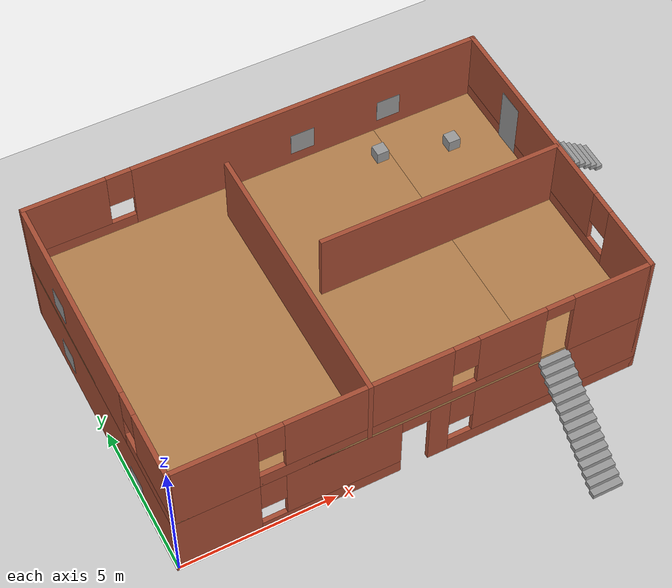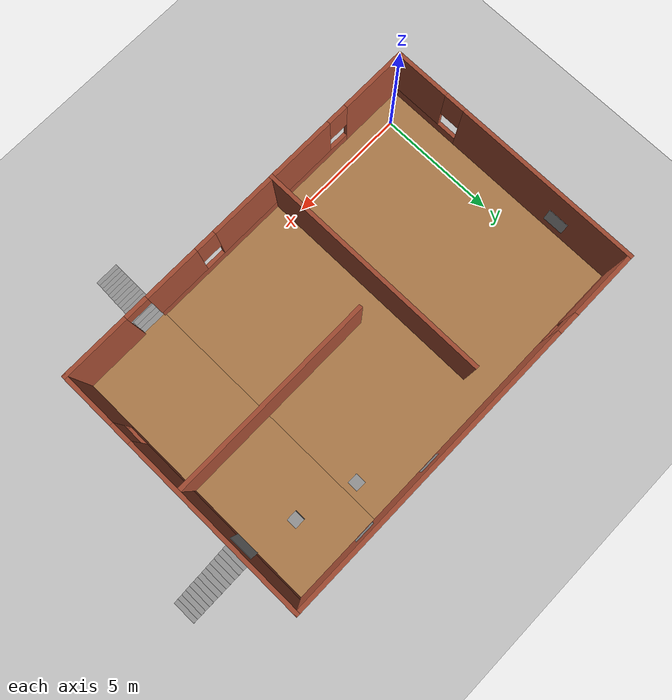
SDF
<sdf version="1.7">
 <world name="default">
  <model name="ground_plane">
   <static>1</static>
   <link name="link">
    <collision name="collision">
     <geometry><plane><normal>0 0 1</normal><size>100 100</size></plane></geometry>
     <surface><friction><ode><mu>100</mu><mu2>50</mu2></ode></friction></surface>
    </collision>
    <visual name="visual">
     <cast_shadows>0</cast_shadows>
     <geometry><plane><normal>0 0 1</normal><size>100 100</size></plane></geometry>
     <material>
      <script><uri>file://media/materials/scripts/gazebo.material</uri><name>Gazebo/Grey</name></script>
     </material>
    </visual>
   </link>
  </model>
  <model name="warehouse_automation">
   <pose>9.2125 3.2875 0 0 -0 0</pose>
   <link name="Door_1">
    <collision name="Door_1_Collision">
     <geometry><box><size>0.9 0.17 2</size></box></geometry>
     <pose>0 0 1 0 -0 0</pose>
    </collision>
    <visual name="Door_1_Visual">
     <pose>0 0 1 0 -0 0</pose>
     <geometry><box><size>0.9 0.17 2</size></box></geometry>
     <material>
      <script><uri>file://media/materials/scripts/gazebo.material</uri><name>Gazebo/Grey</name></script>
     </material>
    </visual>
    <pose>5.7875 4.2125 2.5 0 -0 1.58891</pose>
   </link>
   <link name="Floor_0">
    <pose>-1.7125 1.7125 2.5 0 -0 0</pose>
    <visual name="Floor_0_Visual_0">
     <pose>-1.7875 0 0.05 0 -0 0</pose>
     <geometry><box><size>11.575 10.15 0.1</size></box></geometry>
     <material>
      <script><uri>file://media/materials/scripts/gazebo.material</uri><name>Gazebo/Wood</name></script>
      <ambient>0.835294 0.780392 0.478431 1</ambient>
     </material>
     <meta><layer>1</layer></meta>
    </visual>
    <collision name="Floor_0_Collision_0">
     <geometry><box><size>11.575 10.15 0.1</size></box></geometry>
     <pose>-1.7875 0 0.05 0 -0 0</pose>
    </collision>
    <visual name="Floor_0_Visual_1">
     <pose>5.75 0.0375 0.05 0 -0 0</pose>
     <geometry><box><size>3.5 10.075 0.1</size></box></geometry>
     <material>
      <script><uri>file://media/materials/scripts/gazebo.material</uri><name>Gazebo/Wood</name></script>
      <ambient>0.835294 0.780392 0.478431 1</ambient>
     </material>
     <meta><layer>1</layer></meta>
    </visual>
    <collision name="Floor_0_Collision_1">
     <geometry><box><size>3.5 10.075 0.1</size></box></geometry>
     <pose>5.75 0.0375 0.05 0 -0 0</pose>
    </collision>
    <visual name="Floor_0_Visual_2">
     <pose>7.5375 -1.5 0.05 0 -0 0</pose>
     <geometry><box><size>0.075 7 0.1</size></box></geometry>
     <material>
      <script><uri>file://media/materials/scripts/gazebo.material</uri><name>Gazebo/Wood</name></script>
      <ambient>0.835294 0.780392 0.478431 1</ambient>
     </material>
     <meta><layer>1</layer></meta>
    </visual>
    <collision name="Floor_0_Collision_2">
     <geometry><box><size>0.075 7 0.1</size></box></geometry>
     <pose>7.5375 -1.5 0.05 0 -0 0</pose>
    </collision>
    <visual name="Floor_0_Visual_3">
     <pose>7.5375 4.0375 0.05 0 -0 0</pose>
     <geometry><box><size>0.075 2.075 0.1</size></box></geometry>
     <material>
      <script><uri>file://media/materials/scripts/gazebo.material</uri><name>Gazebo/Wood</name></script>
      <ambient>0.835294 0.780392 0.478431 1</ambient>
     </material>
     <meta><layer>1</layer></meta>
    </visual>
    <collision name="Floor_0_Collision_3">
     <geometry><box><size>0.075 2.075 0.1</size></box></geometry>
     <pose>7.5375 4.0375 0.05 0 -0 0</pose>
    </collision>
   </link>
   <link name="Stairs_0">
    <visual name="Stairs_0_Visual_0">
     <pose>2.7875 -6.67083 0.083333 0 -0 -3.14159</pose>
     <geometry><box><size>1 0.233333 0.166667</size></box></geometry>
     <material>
      <script><uri>file://media/materials/scripts/gazebo.material</uri><name>Gazebo/Grey</name></script>
      <ambient>0.435294 0.454902 0.47451 1</ambient>
     </material>
     <meta><layer>0</layer></meta>
    </visual>
    <collision name="Stairs_0_Collision_0">
     <geometry><box><size>1 0.233333 0.166667</size></box></geometry>
     <pose>2.7875 -6.67083 0.083333 0 -0 -3.14159</pose>
    </collision>
    <visual name="Stairs_0_Visual_1">
     <pose>2.7875 -6.4375 0.25 0 -0 -3.14159</pose>
     <geometry><box><size>1 0.233333 0.166667</size></box></geometry>
     <material>
      <script><uri>file://media/materials/scripts/gazebo.material</uri><name>Gazebo/Grey</name></script>
      <ambient>0.435294 0.454902 0.47451 1</ambient>
     </material>
     <meta><layer>0</layer></meta>
    </visual>
    <collision name="Stairs_0_Collision_1">
     <geometry><box><size>1 0.233333 0.166667</size></box></geometry>
     <pose>2.7875 -6.4375 0.25 0 -0 -3.14159</pose>
    </collision>
    <visual name="Stairs_0_Visual_2">
     <pose>2.7875 -6.20417 0.416667 0 -0 -3.14159</pose>
     <geometry><box><size>1 0.233333 0.166667</size></box></geometry>
     <material>
      <script><uri>file://media/materials/scripts/gazebo.material</uri><name>Gazebo/Grey</name></script>
      <ambient>0.435294 0.454902 0.47451 1</ambient>
     </material>
     <meta><layer>0</layer></meta>
    </visual>
    <collision name="Stairs_0_Collision_2">
     <geometry><box><size>1 0.233333 0.166667</size></box></geometry>
     <pose>2.7875 -6.20417 0.416667 0 -0 -3.14159</pose>
    </collision>
    <visual name="Stairs_0_Visual_3">
     <pose>2.7875 -5.97083 0.583333 0 -0 -3.14159</pose>
     <geometry><box><size>1 0.233333 0.166667</size></box></geometry>
     <material>
      <script><uri>file://media/materials/scripts/gazebo.material</uri><name>Gazebo/Grey</name></script>
      <ambient>0.435294 0.454902 0.47451 1</ambient>
     </material>
     <meta><layer>0</layer></meta>
    </visual>
    <collision name="Stairs_0_Collision_3">
     <geometry><box><size>1 0.233333 0.166667</size></box></geometry>
     <pose>2.7875 -5.97083 0.583333 0 -0 -3.14159</pose>
    </collision>
    <visual name="Stairs_0_Visual_4">
     <pose>2.7875 -5.7375 0.75 0 -0 -3.14159</pose>
     <geometry><box><size>1 0.233333 0.166667</size></box></geometry>
     <material>
      <script><uri>file://media/materials/scripts/gazebo.material</uri><name>Gazebo/Grey</name></script>
      <ambient>0.435294 0.454902 0.47451 1</ambient>
     </material>
     <meta><layer>0</layer></meta>
    </visual>
    <collision name="Stairs_0_Collision_4">
     <geometry><box><size>1 0.233333 0.166667</size></box></geometry>
     <pose>2.7875 -5.7375 0.75 0 -0 -3.14159</pose>
    </collision>
    <visual name="Stairs_0_Visual_5">
     <pose>2.7875 -5.50417 0.916667 0 -0 -3.14159</pose>
     <geometry><box><size>1 0.233333 0.166667</size></box></geometry>
     <material>
      <script><uri>file://media/materials/scripts/gazebo.material</uri><name>Gazebo/Grey</name></script>
      <ambient>0.435294 0.454902 0.47451 1</ambient>
     </material>
     <meta><layer>0</layer></meta>
    </visual>
    <collision name="Stairs_0_Collision_5">
     <geometry><box><size>1 0.233333 0.166667</size></box></geometry>
     <pose>2.7875 -5.50417 0.916667 0 -0 -3.14159</pose>
    </collision>
    <visual name="Stairs_0_Visual_6">
     <pose>2.7875 -5.27083 1.08333 0 -0 -3.14159</pose>
     <geometry><box><size>1 0.233333 0.166667</size></box></geometry>
     <material>
      <script><uri>file://media/materials/scripts/gazebo.material</uri><name>Gazebo/Grey</name></script>
      <ambient>0.435294 0.454902 0.47451 1</ambient>
     </material>
     <meta><layer>0</layer></meta>
    </visual>
    <collision name="Stairs_0_Collision_6">
     <geometry><box><size>1 0.233333 0.166667</size></box></geometry>
     <pose>2.7875 -5.27083 1.08333 0 -0 -3.14159</pose>
    </collision>
    <visual name="Stairs_0_Visual_7">
     <pose>2.7875 -5.0375 1.25 0 -0 -3.14159</pose>
     <geometry><box><size>1 0.233333 0.166667</size></box></geometry>
     <material>
      <script><uri>file://media/materials/scripts/gazebo.material</uri><name>Gazebo/Grey</name></script>
      <ambient>0.435294 0.454902 0.47451 1</ambient>
     </material>
     <meta><layer>0</layer></meta>
    </visual>
    <collision name="Stairs_0_Collision_7">
     <geometry><box><size>1 0.233333 0.166667</size></box></geometry>
     <pose>2.7875 -5.0375 1.25 0 -0 -3.14159</pose>
    </collision>
    <visual name="Stairs_0_Visual_8">
     <pose>2.7875 -4.80417 1.41667 0 -0 -3.14159</pose>
     <geometry><box><size>1 0.233333 0.166667</size></box></geometry>
     <material>
      <script><uri>file://media/materials/scripts/gazebo.material</uri><name>Gazebo/Grey</name></script>
      <ambient>0.435294 0.454902 0.47451 1</ambient>
     </material>
     <meta><layer>0</layer></meta>
    </visual>
    <collision name="Stairs_0_Collision_8">
     <geometry><box><size>1 0.233333 0.166667</size></box></geometry>
     <pose>2.7875 -4.80417 1.41667 0 -0 -3.14159</pose>
    </collision>
    <visual name="Stairs_0_Visual_9">
     <pose>2.7875 -4.57083 1.58333 0 -0 -3.14159</pose>
     <geometry><box><size>1 0.233333 0.166667</size></box></geometry>
     <material>
      <script><uri>file://media/materials/scripts/gazebo.material</uri><name>Gazebo/Grey</name></script>
      <ambient>0.435294 0.454902 0.47451 1</ambient>
     </material>
     <meta><layer>0</layer></meta>
    </visual>
    <collision name="Stairs_0_Collision_9">
     <geometry><box><size>1 0.233333 0.166667</size></box></geometry>
     <pose>2.7875 -4.57083 1.58333 0 -0 -3.14159</pose>
    </collision>
    <visual name="Stairs_0_Visual_10">
     <pose>2.7875 -4.3375 1.75 0 -0 -3.14159</pose>
     <geometry><box><size>1 0.233333 0.166667</size></box></geometry>
     <material>
      <script><uri>file://media/materials/scripts/gazebo.material</uri><name>Gazebo/Grey</name></script>
      <ambient>0.435294 0.454902 0.47451 1</ambient>
     </material>
     <meta><layer>0</layer></meta>
    </visual>
    <collision name="Stairs_0_Collision_10">
     <geometry><box><size>1 0.233333 0.166667</size></box></geometry>
     <pose>2.7875 -4.3375 1.75 0 -0 -3.14159</pose>
    </collision>
    <visual name="Stairs_0_Visual_11">
     <pose>2.7875 -4.10417 1.91667 0 -0 -3.14159</pose>
     <geometry><box><size>1 0.233333 0.166667</size></box></geometry>
     <material>
      <script><uri>file://media/materials/scripts/gazebo.material</uri><name>Gazebo/Grey</name></script>
      <ambient>0.435294 0.454902 0.47451 1</ambient>
     </material>
     <meta><layer>0</layer></meta>
    </visual>
    <collision name="Stairs_0_Collision_11">
     <geometry><box><size>1 0.233333 0.166667</size></box></geometry>
     <pose>2.7875 -4.10417 1.91667 0 -0 -3.14159</pose>
    </collision>
    <visual name="Stairs_0_Visual_12">
     <pose>2.7875 -3.87083 2.08333 0 -0 -3.14159</pose>
     <geometry><box><size>1 0.233333 0.166667</size></box></geometry>
     <material>
      <script><uri>file://media/materials/scripts/gazebo.material</uri><name>Gazebo/Grey</name></script>
      <ambient>0.435294 0.454902 0.47451 1</ambient>
     </material>
     <meta><layer>0</layer></meta>
    </visual>
    <collision name="Stairs_0_Collision_12">
     <geometry><box><size>1 0.233333 0.166667</size></box></geometry>
     <pose>2.7875 -3.87083 2.08333 0 -0 -3.14159</pose>
    </collision>
    <visual name="Stairs_0_Visual_13">
     <pose>2.7875 -3.6375 2.25 0 -0 -3.14159</pose>
     <geometry><box><size>1 0.233333 0.166667</size></box></geometry>
     <material>
      <script><uri>file://media/materials/scripts/gazebo.material</uri><name>Gazebo/Grey</name></script>
      <ambient>0.435294 0.454902 0.47451 1</ambient>
     </material>
     <meta><layer>0</layer></meta>
    </visual>
    <collision name="Stairs_0_Collision_13">
     <geometry><box><size>1 0.233333 0.166667</size></box></geometry>
     <pose>2.7875 -3.6375 2.25 0 -0 -3.14159</pose>
    </collision>
    <visual name="Stairs_0_Visual_14">
     <pose>2.7875 -3.40417 2.41667 0 -0 -3.14159</pose>
     <geometry><box><size>1 0.233333 0.166667</size></box></geometry>
     <material>
      <script><uri>file://media/materials/scripts/gazebo.material</uri><name>Gazebo/Grey</name></script>
      <ambient>0.435294 0.454902 0.47451 1</ambient>
     </material>
     <meta><layer>0</layer></meta>
    </visual>
    <collision name="Stairs_0_Collision_14">
     <geometry><box><size>1 0.233333 0.166667</size></box></geometry>
     <pose>2.7875 -3.40417 2.41667 0 -0 -3.14159</pose>
    </collision>
   </link>
   <link name="Stairs_1">
    <visual name="Stairs_1_Visual_0">
     <pose>9.17083 4.2125 0.083333 0 -0 -1.5708</pose>
     <geometry><box><size>1 0.233333 0.166667</size></box></geometry>
     <material>
      <script><uri>file://media/materials/scripts/gazebo.material</uri><name>Gazebo/Grey</name></script>
      <ambient>1 1 1 1</ambient>
     </material>
     <meta><layer>0</layer></meta>
    </visual>
    <collision name="Stairs_1_Collision_0">
     <geometry><box><size>1 0.233333 0.166667</size></box></geometry>
     <pose>9.17083 4.2125 0.083333 0 -0 -1.5708</pose>
    </collision>
    <visual name="Stairs_1_Visual_1">
     <pose>8.9375 4.2125 0.25 0 -0 -1.5708</pose>
     <geometry><box><size>1 0.233333 0.166667</size></box></geometry>
     <material>
      <script><uri>file://media/materials/scripts/gazebo.material</uri><name>Gazebo/Grey</name></script>
      <ambient>1 1 1 1</ambient>
     </material>
     <meta><layer>0</layer></meta>
    </visual>
    <collision name="Stairs_1_Collision_1">
     <geometry><box><size>1 0.233333 0.166667</size></box></geometry>
     <pose>8.9375 4.2125 0.25 0 -0 -1.5708</pose>
    </collision>
    <visual name="Stairs_1_Visual_2">
     <pose>8.70417 4.2125 0.416667 0 -0 -1.5708</pose>
     <geometry><box><size>1 0.233333 0.166667</size></box></geometry>
     <material>
      <script><uri>file://media/materials/scripts/gazebo.material</uri><name>Gazebo/Grey</name></script>
      <ambient>1 1 1 1</ambient>
     </material>
     <meta><layer>0</layer></meta>
    </visual>
    <collision name="Stairs_1_Collision_2">
     <geometry><box><size>1 0.233333 0.166667</size></box></geometry>
     <pose>8.70417 4.2125 0.416667 0 -0 -1.5708</pose>
    </collision>
    <visual name="Stairs_1_Visual_3">
     <pose>8.47083 4.2125 0.583333 0 -0 -1.5708</pose>
     <geometry><box><size>1 0.233333 0.166667</size></box></geometry>
     <material>
      <script><uri>file://media/materials/scripts/gazebo.material</uri><name>Gazebo/Grey</name></script>
      <ambient>1 1 1 1</ambient>
     </material>
     <meta><layer>0</layer></meta>
    </visual>
    <collision name="Stairs_1_Collision_3">
     <geometry><box><size>1 0.233333 0.166667</size></box></geometry>
     <pose>8.47083 4.2125 0.583333 0 -0 -1.5708</pose>
    </collision>
    <visual name="Stairs_1_Visual_4">
     <pose>8.2375 4.2125 0.75 0 -0 -1.5708</pose>
     <geometry><box><size>1 0.233333 0.166667</size></box></geometry>
     <material>
      <script><uri>file://media/materials/scripts/gazebo.material</uri><name>Gazebo/Grey</name></script>
      <ambient>1 1 1 1</ambient>
     </material>
     <meta><layer>0</layer></meta>
    </visual>
    <collision name="Stairs_1_Collision_4">
     <geometry><box><size>1 0.233333 0.166667</size></box></geometry>
     <pose>8.2375 4.2125 0.75 0 -0 -1.5708</pose>
    </collision>
    <visual name="Stairs_1_Visual_5">
     <pose>8.00417 4.2125 0.916667 0 -0 -1.5708</pose>
     <geometry><box><size>1 0.233333 0.166667</size></box></geometry>
     <material>
      <script><uri>file://media/materials/scripts/gazebo.material</uri><name>Gazebo/Grey</name></script>
      <ambient>1 1 1 1</ambient>
     </material>
     <meta><layer>0</layer></meta>
    </visual>
    <collision name="Stairs_1_Collision_5">
     <geometry><box><size>1 0.233333 0.166667</size></box></geometry>
     <pose>8.00417 4.2125 0.916667 0 -0 -1.5708</pose>
    </collision>
    <visual name="Stairs_1_Visual_6">
     <pose>7.77083 4.2125 1.08333 0 -0 -1.5708</pose>
     <geometry><box><size>1 0.233333 0.166667</size></box></geometry>
     <material>
      <script><uri>file://media/materials/scripts/gazebo.material</uri><name>Gazebo/Grey</name></script>
      <ambient>1 1 1 1</ambient>
     </material>
     <meta><layer>0</layer></meta>
    </visual>
    <collision name="Stairs_1_Collision_6">
     <geometry><box><size>1 0.233333 0.166667</size></box></geometry>
     <pose>7.77083 4.2125 1.08333 0 -0 -1.5708</pose>
    </collision>
    <visual name="Stairs_1_Visual_7">
     <pose>7.5375 4.2125 1.25 0 -0 -1.5708</pose>
     <geometry><box><size>1 0.233333 0.166667</size></box></geometry>
     <material>
      <script><uri>file://media/materials/scripts/gazebo.material</uri><name>Gazebo/Grey</name></script>
      <ambient>1 1 1 1</ambient>
     </material>
     <meta><layer>0</layer></meta>
    </visual>
    <collision name="Stairs_1_Collision_7">
     <geometry><box><size>1 0.233333 0.166667</size></box></geometry>
     <pose>7.5375 4.2125 1.25 0 -0 -1.5708</pose>
    </collision>
    <visual name="Stairs_1_Visual_8">
     <pose>7.30417 4.2125 1.41667 0 -0 -1.5708</pose>
     <geometry><box><size>1 0.233333 0.166667</size></box></geometry>
     <material>
      <script><uri>file://media/materials/scripts/gazebo.material</uri><name>Gazebo/Grey</name></script>
      <ambient>1 1 1 1</ambient>
     </material>
     <meta><layer>0</layer></meta>
    </visual>
    <collision name="Stairs_1_Collision_8">
     <geometry><box><size>1 0.233333 0.166667</size></box></geometry>
     <pose>7.30417 4.2125 1.41667 0 -0 -1.5708</pose>
    </collision>
    <visual name="Stairs_1_Visual_9">
     <pose>7.07083 4.2125 1.58333 0 -0 -1.5708</pose>
     <geometry><box><size>1 0.233333 0.166667</size></box></geometry>
     <material>
      <script><uri>file://media/materials/scripts/gazebo.material</uri><name>Gazebo/Grey</name></script>
      <ambient>1 1 1 1</ambient>
     </material>
     <meta><layer>0</layer></meta>
    </visual>
    <collision name="Stairs_1_Collision_9">
     <geometry><box><size>1 0.233333 0.166667</size></box></geometry>
     <pose>7.07083 4.2125 1.58333 0 -0 -1.5708</pose>
    </collision>
    <visual name="Stairs_1_Visual_10">
     <pose>6.8375 4.2125 1.75 0 -0 -1.5708</pose>
     <geometry><box><size>1 0.233333 0.166667</size></box></geometry>
     <material>
      <script><uri>file://media/materials/scripts/gazebo.material</uri><name>Gazebo/Grey</name></script>
      <ambient>1 1 1 1</ambient>
     </material>
     <meta><layer>0</layer></meta>
    </visual>
    <collision name="Stairs_1_Collision_10">
     <geometry><box><size>1 0.233333 0.166667</size></box></geometry>
     <pose>6.8375 4.2125 1.75 0 -0 -1.5708</pose>
    </collision>
    <visual name="Stairs_1_Visual_11">
     <pose>6.60417 4.2125 1.91667 0 -0 -1.5708</pose>
     <geometry><box><size>1 0.233333 0.166667</size></box></geometry>
     <material>
      <script><uri>file://media/materials/scripts/gazebo.material</uri><name>Gazebo/Grey</name></script>
      <ambient>1 1 1 1</ambient>
     </material>
     <meta><layer>0</layer></meta>
    </visual>
    <collision name="Stairs_1_Collision_11">
     <geometry><box><size>1 0.233333 0.166667</size></box></geometry>
     <pose>6.60417 4.2125 1.91667 0 -0 -1.5708</pose>
    </collision>
    <visual name="Stairs_1_Visual_12">
     <pose>6.37083 4.2125 2.08333 0 -0 -1.5708</pose>
     <geometry><box><size>1 0.233333 0.166667</size></box></geometry>
     <material>
      <script><uri>file://media/materials/scripts/gazebo.material</uri><name>Gazebo/Grey</name></script>
      <ambient>1 1 1 1</ambient>
     </material>
     <meta><layer>0</layer></meta>
    </visual>
    <collision name="Stairs_1_Collision_12">
     <geometry><box><size>1 0.233333 0.166667</size></box></geometry>
     <pose>6.37083 4.2125 2.08333 0 -0 -1.5708</pose>
    </collision>
    <visual name="Stairs_1_Visual_13">
     <pose>6.1375 4.2125 2.25 0 -0 -1.5708</pose>
     <geometry><box><size>1 0.233333 0.166667</size></box></geometry>
     <material>
      <script><uri>file://media/materials/scripts/gazebo.material</uri><name>Gazebo/Grey</name></script>
      <ambient>1 1 1 1</ambient>
     </material>
     <meta><layer>0</layer></meta>
    </visual>
    <collision name="Stairs_1_Collision_13">
     <geometry><box><size>1 0.233333 0.166667</size></box></geometry>
     <pose>6.1375 4.2125 2.25 0 -0 -1.5708</pose>
    </collision>
    <visual name="Stairs_1_Visual_14">
     <pose>5.90417 4.2125 2.41667 0 -0 -1.5708</pose>
     <geometry><box><size>1 0.233333 0.166667</size></box></geometry>
     <material>
      <script><uri>file://media/materials/scripts/gazebo.material</uri><name>Gazebo/Grey</name></script>
      <ambient>1 1 1 1</ambient>
     </material>
     <meta><layer>0</layer></meta>
    </visual>
    <collision name="Stairs_1_Collision_14">
     <geometry><box><size>1 0.233333 0.166667</size></box></geometry>
     <pose>5.90417 4.2125 2.41667 0 -0 -1.5708</pose>
    </collision>
   </link>
   <link name="Wall_0">
    <pose>-1.7125 -3.2875 0 0 -0 0</pose>
    <visual name="Wall_0_Visual_0">
     <pose>-6.2375 0 1.25 0 -0 0</pose>
     <geometry><box><size>2.675 0.15 2.5</size></box></geometry>
     <material>
      <script><uri>file://media/materials/scripts/gazebo.material</uri><name>Gazebo/Bricks</name></script>
      <ambient>1 1 1 1</ambient>
     </material>
     <meta><layer>0</layer></meta>
    </visual>
    <collision name="Wall_0_Collision_0">
     <geometry><box><size>2.675 0.15 2.5</size></box></geometry>
     <pose>-6.2375 0 1.25 0 -0 0</pose>
    </collision>
    <visual name="Wall_0_Visual_1">
     <pose>0.775 0 1.25 0 -0 0</pose>
     <geometry><box><size>0.65 0.15 2.5</size></box></geometry>
     <material>
      <script><uri>file://media/materials/scripts/gazebo.material</uri><name>Gazebo/Bricks</name></script>
      <ambient>1 1 1 1</ambient>
     </material>
     <meta><layer>0</layer></meta>
    </visual>
    <collision name="Wall_0_Collision_1">
     <geometry><box><size>0.65 0.15 2.5</size></box></geometry>
     <pose>0.775 0 1.25 0 -0 0</pose>
    </collision>
    <visual name="Wall_0_Visual_2">
     <pose>-2.675 0 0.25 0 -0 0</pose>
     <geometry><box><size>4.45 0.15 0.5</size></box></geometry>
     <material>
      <script><uri>file://media/materials/scripts/gazebo.material</uri><name>Gazebo/Bricks</name></script>
      <ambient>1 1 1 1</ambient>
     </material>
     <meta><layer>0</layer></meta>
    </visual>
    <collision name="Wall_0_Collision_2">
     <geometry><box><size>4.45 0.15 0.5</size></box></geometry>
     <pose>-2.675 0 0.25 0 -0 0</pose>
    </collision>
    <visual name="Wall_0_Visual_3">
     <pose>4.3375 0 0.25 0 -0 0</pose>
     <geometry><box><size>6.475 0.15 0.5</size></box></geometry>
     <material>
      <script><uri>file://media/materials/scripts/gazebo.material</uri><name>Gazebo/Bricks</name></script>
      <ambient>1 1 1 1</ambient>
     </material>
     <meta><layer>0</layer></meta>
    </visual>
    <collision name="Wall_0_Collision_3">
     <geometry><box><size>6.475 0.15 0.5</size></box></geometry>
     <pose>4.3375 0 0.25 0 -0 0</pose>
    </collision>
    <visual name="Wall_0_Visual_4">
     <pose>-2.275 0 1.5 0 -0 0</pose>
     <geometry><box><size>3.65 0.15 2</size></box></geometry>
     <material>
      <script><uri>file://media/materials/scripts/gazebo.material</uri><name>Gazebo/Bricks</name></script>
      <ambient>1 1 1 1</ambient>
     </material>
     <meta><layer>0</layer></meta>
    </visual>
    <collision name="Wall_0_Collision_4">
     <geometry><box><size>3.65 0.15 2</size></box></geometry>
     <pose>-2.275 0 1.5 0 -0 0</pose>
    </collision>
    <visual name="Wall_0_Visual_5">
     <pose>-2.275 0 1.5 0 -0 0</pose>
     <geometry><box><size>3.65 0.15 2</size></box></geometry>
     <material>
      <script><uri>file://media/materials/scripts/gazebo.material</uri><name>Gazebo/Bricks</name></script>
      <ambient>1 1 1 1</ambient>
     </material>
     <meta><layer>0</layer></meta>
    </visual>
    <collision name="Wall_0_Collision_5">
     <geometry><box><size>3.65 0.15 2</size></box></geometry>
     <pose>-2.275 0 1.5 0 -0 0</pose>
    </collision>
    <visual name="Wall_0_Visual_6">
     <pose>4.7375 0 1.5 0 -0 0</pose>
     <geometry><box><size>5.675 0.15 2</size></box></geometry>
     <material>
      <script><uri>file://media/materials/scripts/gazebo.material</uri><name>Gazebo/Bricks</name></script>
      <ambient>1 1 1 1</ambient>
     </material>
     <meta><layer>0</layer></meta>
    </visual>
    <collision name="Wall_0_Collision_6">
     <geometry><box><size>5.675 0.15 2</size></box></geometry>
     <pose>4.7375 0 1.5 0 -0 0</pose>
    </collision>
    <visual name="Wall_0_Visual_7">
     <pose>-4.5 0 1.9 0 -0 0</pose>
     <geometry><box><size>0.8 0.15 1.2</size></box></geometry>
     <material>
      <script><uri>file://media/materials/scripts/gazebo.material</uri><name>Gazebo/Bricks</name></script>
      <ambient>1 1 1 1</ambient>
     </material>
     <meta><layer>0</layer></meta>
    </visual>
    <collision name="Wall_0_Collision_7">
     <geometry><box><size>0.8 0.15 1.2</size></box></geometry>
     <pose>-4.5 0 1.9 0 -0 0</pose>
    </collision>
    <visual name="Wall_0_Visual_8">
     <pose>1.5 0 1.9 0 -0 0</pose>
     <geometry><box><size>0.8 0.15 1.2</size></box></geometry>
     <material>
      <script><uri>file://media/materials/scripts/gazebo.material</uri><name>Gazebo/Bricks</name></script>
      <ambient>1 1 1 1</ambient>
     </material>
     <meta><layer>0</layer></meta>
    </visual>
    <collision name="Wall_0_Collision_8">
     <geometry><box><size>0.8 0.15 1.2</size></box></geometry>
     <pose>1.5 0 1.9 0 -0 0</pose>
    </collision>
    <visual name="Wall_0_Visual_9">
     <pose>0 0 2.25 0 -0 0</pose>
     <geometry><box><size>0.9 0.15 0.5</size></box></geometry>
     <material>
      <script><uri>file://media/materials/scripts/gazebo.material</uri><name>Gazebo/Bricks</name></script>
      <ambient>1 1 1 1</ambient>
     </material>
     <meta><layer>0</layer></meta>
    </visual>
    <collision name="Wall_0_Collision_9">
     <geometry><box><size>0.9 0.15 0.5</size></box></geometry>
     <pose>0 0 2.25 0 -0 0</pose>
    </collision>
    <visual name="Wall_0_Visual_10">
     <pose>0 0 2.25 0 -0 0</pose>
     <geometry><box><size>0.9 0.15 0.5</size></box></geometry>
     <material>
      <script><uri>file://media/materials/scripts/gazebo.material</uri><name>Gazebo/Bricks</name></script>
      <ambient>1 1 1 1</ambient>
     </material>
     <meta><layer>0</layer></meta>
    </visual>
    <collision name="Wall_0_Collision_10">
     <geometry><box><size>0.9 0.15 0.5</size></box></geometry>
     <pose>0 0 2.25 0 -0 0</pose>
    </collision>
   </link>
   <link name="Wall_1">
    <collision name="Wall_1_Collision">
     <geometry><box><size>10.15 0.15 2.5</size></box></geometry>
     <pose>0 0 1.25 0 -0 0</pose>
    </collision>
    <visual name="Wall_1_Visual">
     <pose>0 0 1.25 0 -0 0</pose>
     <geometry><box><size>10.15 0.15 2.5</size></box></geometry>
     <material>
      <script><uri>file://media/materials/scripts/gazebo.material</uri><name>Gazebo/Bricks</name></script>
      <ambient>1 1 1 1</ambient>
     </material>
     <meta><layer>0</layer></meta>
    </visual>
    <pose>5.7875 1.7125 0 0 -0 1.5708</pose>
   </link>
   <link name="Wall_11">
    <collision name="Wall_11_Collision">
     <geometry><box><size>9.0 0.15 2.5</size></box></geometry>
     <pose>0 0 1.25 0 -0 0</pose>
    </collision>
    <visual name="Wall_11_Visual">
     <pose>0 0 1.25 0 -0 0</pose>
     <geometry><box><size>9.0 0.15 2.5</size></box></geometry>
     <material>
      <script><uri>file://media/materials/scripts/gazebo.material</uri><name>Gazebo/Bricks</name></script>
      <ambient>1 1 1 1</ambient>
     </material>
     <meta><layer>1</layer></meta>
    </visual>
    <pose>-3.2125 1.1375 2.5 0 -0 1.5708</pose>
   </link>
   <link name="Wall_2">
    <pose>-1.7125 6.7125 0 0 -0 3.14159</pose>
    <visual name="Wall_2_Visual_0">
     <pose>-6.2375 0 1.25 0 -0 0</pose>
     <geometry><box><size>2.675 0.15 2.5</size></box></geometry>
     <material>
      <script><uri>file://media/materials/scripts/gazebo.material</uri><name>Gazebo/Bricks</name></script>
      <ambient>1 1 1 1</ambient>
     </material>
     <meta><layer>0</layer></meta>
    </visual>
    <collision name="Wall_2_Collision_0">
     <geometry><box><size>2.675 0.15 2.5</size></box></geometry>
     <pose>-6.2375 0 1.25 0 -0 0</pose>
    </collision>
    <visual name="Wall_2_Visual_1">
     <pose>1.3375 0 0.25 0 -0 0</pose>
     <geometry><box><size>12.475 0.15 0.5</size></box></geometry>
     <material>
      <script><uri>file://media/materials/scripts/gazebo.material</uri><name>Gazebo/Bricks</name></script>
      <ambient>1 1 1 1</ambient>
     </material>
     <meta><layer>0</layer></meta>
    </visual>
    <collision name="Wall_2_Collision_1">
     <geometry><box><size>12.475 0.15 0.5</size></box></geometry>
     <pose>1.3375 0 0.25 0 -0 0</pose>
    </collision>
    <visual name="Wall_2_Visual_2">
     <pose>1.7375 0 1.5 0 -0 0</pose>
     <geometry><box><size>11.675 0.15 2</size></box></geometry>
     <material>
      <script><uri>file://media/materials/scripts/gazebo.material</uri><name>Gazebo/Bricks</name></script>
      <ambient>1 1 1 1</ambient>
     </material>
     <meta><layer>0</layer></meta>
    </visual>
    <collision name="Wall_2_Collision_2">
     <geometry><box><size>11.675 0.15 2</size></box></geometry>
     <pose>1.7375 0 1.5 0 -0 0</pose>
    </collision>
    <visual name="Wall_2_Visual_3">
     <pose>-4.5 0 1.9 0 -0 0</pose>
     <geometry><box><size>0.8 0.15 1.2</size></box></geometry>
     <material>
      <script><uri>file://media/materials/scripts/gazebo.material</uri><name>Gazebo/Bricks</name></script>
      <ambient>1 1 1 1</ambient>
     </material>
     <meta><layer>0</layer></meta>
    </visual>
    <collision name="Wall_2_Collision_3">
     <geometry><box><size>0.8 0.15 1.2</size></box></geometry>
     <pose>-4.5 0 1.9 0 -0 0</pose>
    </collision>
   </link>
   <link name="Wall_3">
    <collision name="Wall_3_Collision">
     <geometry><box><size>10.15 0.15 2.5</size></box></geometry>
     <pose>0 0 1.25 0 -0 0</pose>
    </collision>
    <visual name="Wall_3_Visual">
     <pose>0 0 1.25 0 -0 0</pose>
     <geometry><box><size>10.15 0.15 2.5</size></box></geometry>
     <material>
      <script><uri>file://media/materials/scripts/gazebo.material</uri><name>Gazebo/Bricks</name></script>
      <ambient>1 1 1 1</ambient>
     </material>
     <meta><layer>0</layer></meta>
    </visual>
    <pose>-9.2125 1.7125 0 0 -0 -1.5708</pose>
   </link>
   <link name="Wall_5">
    <pose>-1.7125 -3.2875 2.5 0 -0 0</pose>
    <visual name="Wall_5_Visual_0">
     <pose>-6.2375 0 1.25 0 -0 0</pose>
     <geometry><box><size>2.675 0.15 2.5</size></box></geometry>
     <material>
      <script><uri>file://media/materials/scripts/gazebo.material</uri><name>Gazebo/Bricks</name></script>
      <ambient>1 1 1 1</ambient>
     </material>
     <meta><layer>1</layer></meta>
    </visual>
    <collision name="Wall_5_Collision_0">
     <geometry><box><size>2.675 0.15 2.5</size></box></geometry>
     <pose>-6.2375 0 1.25 0 -0 0</pose>
    </collision>
    <visual name="Wall_5_Visual_1">
     <pose>6.2625 0 1.25 0 -0 0</pose>
     <geometry><box><size>2.625 0.15 2.5</size></box></geometry>
     <material>
      <script><uri>file://media/materials/scripts/gazebo.material</uri><name>Gazebo/Bricks</name></script>
      <ambient>1 1 1 1</ambient>
     </material>
     <meta><layer>1</layer></meta>
    </visual>
    <collision name="Wall_5_Collision_1">
     <geometry><box><size>2.625 0.15 2.5</size></box></geometry>
     <pose>6.2625 0 1.25 0 -0 0</pose>
    </collision>
    <visual name="Wall_5_Visual_2">
     <pose>-0.425 0 0.25 0 -0 0</pose>
     <geometry><box><size>8.95 0.15 0.5</size></box></geometry>
     <material>
      <script><uri>file://media/materials/scripts/gazebo.material</uri><name>Gazebo/Bricks</name></script>
      <ambient>1 1 1 1</ambient>
     </material>
     <meta><layer>1</layer></meta>
    </visual>
    <collision name="Wall_5_Collision_2">
     <geometry><box><size>8.95 0.15 0.5</size></box></geometry>
     <pose>-0.425 0 0.25 0 -0 0</pose>
    </collision>
    <visual name="Wall_5_Visual_3">
     <pose>-1.5 0 1.5 0 -0 0</pose>
     <geometry><box><size>5.2 0.15 2</size></box></geometry>
     <material>
      <script><uri>file://media/materials/scripts/gazebo.material</uri><name>Gazebo/Bricks</name></script>
      <ambient>1 1 1 1</ambient>
     </material>
     <meta><layer>1</layer></meta>
    </visual>
    <collision name="Wall_5_Collision_3">
     <geometry><box><size>5.2 0.15 2</size></box></geometry>
     <pose>-1.5 0 1.5 0 -0 0</pose>
    </collision>
    <visual name="Wall_5_Visual_4">
     <pose>2.975 0 1.5 0 -0 0</pose>
     <geometry><box><size>2.15 0.15 2</size></box></geometry>
     <material>
      <script><uri>file://media/materials/scripts/gazebo.material</uri><name>Gazebo/Bricks</name></script>
      <ambient>1 1 1 1</ambient>
     </material>
     <meta><layer>1</layer></meta>
    </visual>
    <collision name="Wall_5_Collision_4">
     <geometry><box><size>2.15 0.15 2</size></box></geometry>
     <pose>2.975 0 1.5 0 -0 0</pose>
    </collision>
    <visual name="Wall_5_Visual_5">
     <pose>-4.5 0 1.9 0 -0 0</pose>
     <geometry><box><size>0.8 0.15 1.2</size></box></geometry>
     <material>
      <script><uri>file://media/materials/scripts/gazebo.material</uri><name>Gazebo/Bricks</name></script>
      <ambient>1 1 1 1</ambient>
     </material>
     <meta><layer>1</layer></meta>
    </visual>
    <collision name="Wall_5_Collision_5">
     <geometry><box><size>0.8 0.15 1.2</size></box></geometry>
     <pose>-4.5 0 1.9 0 -0 0</pose>
    </collision>
    <visual name="Wall_5_Visual_6">
     <pose>1.5 0 1.9 0 -0 0</pose>
     <geometry><box><size>0.8 0.15 1.2</size></box></geometry>
     <material>
      <script><uri>file://media/materials/scripts/gazebo.material</uri><name>Gazebo/Bricks</name></script>
      <ambient>1 1 1 1</ambient>
     </material>
     <meta><layer>1</layer></meta>
    </visual>
    <collision name="Wall_5_Collision_6">
     <geometry><box><size>0.8 0.15 1.2</size></box></geometry>
     <pose>1.5 0 1.9 0 -0 0</pose>
    </collision>
    <visual name="Wall_5_Visual_7">
     <pose>4.5 0 2.25 0 -0 0</pose>
     <geometry><box><size>0.9 0.15 0.5</size></box></geometry>
     <material>
      <script><uri>file://media/materials/scripts/gazebo.material</uri><name>Gazebo/Bricks</name></script>
      <ambient>1 1 1 1</ambient>
     </material>
     <meta><layer>1</layer></meta>
    </visual>
    <collision name="Wall_5_Collision_7">
     <geometry><box><size>0.9 0.15 0.5</size></box></geometry>
     <pose>4.5 0 2.25 0 -0 0</pose>
    </collision>
   </link>
   <link name="Wall_6">
    <pose>5.7875 1.7125 2.5 0 -0 1.5708</pose>
    <visual name="Wall_6_Visual_0">
     <pose>-3.9875 0 1.25 0 -0 0</pose>
     <geometry><box><size>2.175 0.15 2.5</size></box></geometry>
     <material>
      <script><uri>file://media/materials/scripts/gazebo.material</uri><name>Gazebo/Bricks</name></script>
      <ambient>1 1 1 1</ambient>
     </material>
     <meta><layer>1</layer></meta>
    </visual>
    <collision name="Wall_6_Collision_0">
     <geometry><box><size>2.175 0.15 2.5</size></box></geometry>
     <pose>-3.9875 0 1.25 0 -0 0</pose>
    </collision>
    <visual name="Wall_6_Visual_1">
     <pose>1.0875 0 0.25 0 -0 0</pose>
     <geometry><box><size>7.975 0.15 0.5</size></box></geometry>
     <material>
      <script><uri>file://media/materials/scripts/gazebo.material</uri><name>Gazebo/Bricks</name></script>
      <ambient>1 1 1 1</ambient>
     </material>
     <meta><layer>1</layer></meta>
    </visual>
    <collision name="Wall_6_Collision_1">
     <geometry><box><size>7.975 0.15 0.5</size></box></geometry>
     <pose>1.0875 0 0.25 0 -0 0</pose>
    </collision>
    <visual name="Wall_6_Visual_2">
     <pose>1.4875 0 1.5 0 -0 0</pose>
     <geometry><box><size>7.175 0.15 2</size></box></geometry>
     <material>
      <script><uri>file://media/materials/scripts/gazebo.material</uri><name>Gazebo/Bricks</name></script>
      <ambient>1 1 1 1</ambient>
     </material>
     <meta><layer>1</layer></meta>
    </visual>
    <collision name="Wall_6_Collision_2">
     <geometry><box><size>7.175 0.15 2</size></box></geometry>
     <pose>1.4875 0 1.5 0 -0 0</pose>
    </collision>
    <visual name="Wall_6_Visual_3">
     <pose>-2.5 0 1.9 0 -0 0</pose>
     <geometry><box><size>0.8 0.15 1.2</size></box></geometry>
     <material>
      <script><uri>file://media/materials/scripts/gazebo.material</uri><name>Gazebo/Bricks</name></script>
      <ambient>1 1 1 1</ambient>
     </material>
     <meta><layer>1</layer></meta>
    </visual>
    <collision name="Wall_6_Collision_3">
     <geometry><box><size>0.8 0.15 1.2</size></box></geometry>
     <pose>-2.5 0 1.9 0 -0 0</pose>
    </collision>
   </link>
   <link name="Wall_7">
    <pose>-1.7125 6.7125 2.5 0 -0 3.14159</pose>
    <visual name="Wall_7_Visual_0">
     <pose>-1.7375 0 1.25 0 -0 0</pose>
     <geometry><box><size>11.675 0.15 2.5</size></box></geometry>
     <material>
      <script><uri>file://media/materials/scripts/gazebo.material</uri><name>Gazebo/Bricks</name></script>
      <ambient>1 1 1 1</ambient>
     </material>
     <meta><layer>1</layer></meta>
    </visual>
    <collision name="Wall_7_Collision_0">
     <geometry><box><size>11.675 0.15 2.5</size></box></geometry>
     <pose>-1.7375 0 1.25 0 -0 0</pose>
    </collision>
    <visual name="Wall_7_Visual_1">
     <pose>5.8375 0 0.25 0 -0 0</pose>
     <geometry><box><size>3.475 0.15 0.5</size></box></geometry>
     <material>
      <script><uri>file://media/materials/scripts/gazebo.material</uri><name>Gazebo/Bricks</name></script>
      <ambient>1 1 1 1</ambient>
     </material>
     <meta><layer>1</layer></meta>
    </visual>
    <collision name="Wall_7_Collision_1">
     <geometry><box><size>3.475 0.15 0.5</size></box></geometry>
     <pose>5.8375 0 0.25 0 -0 0</pose>
    </collision>
    <visual name="Wall_7_Visual_2">
     <pose>6.2375 0 1.5 0 -0 0</pose>
     <geometry><box><size>2.675 0.15 2</size></box></geometry>
     <material>
      <script><uri>file://media/materials/scripts/gazebo.material</uri><name>Gazebo/Bricks</name></script>
      <ambient>1 1 1 1</ambient>
     </material>
     <meta><layer>1</layer></meta>
    </visual>
    <collision name="Wall_7_Collision_2">
     <geometry><box><size>2.675 0.15 2</size></box></geometry>
     <pose>6.2375 0 1.5 0 -0 0</pose>
    </collision>
    <visual name="Wall_7_Visual_3">
     <pose>4.5 0 1.9 0 -0 0</pose>
     <geometry><box><size>0.8 0.15 1.2</size></box></geometry>
     <material>
      <script><uri>file://media/materials/scripts/gazebo.material</uri><name>Gazebo/Bricks</name></script>
      <ambient>1 1 1 1</ambient>
     </material>
     <meta><layer>1</layer></meta>
    </visual>
    <collision name="Wall_7_Collision_3">
     <geometry><box><size>0.8 0.15 1.2</size></box></geometry>
     <pose>4.5 0 1.9 0 -0 0</pose>
    </collision>
   </link>
   <link name="Wall_8">
    <pose>-9.2125 1.7125 2.5 0 -0 -1.5708</pose>
    <visual name="Wall_8_Visual_0">
     <pose>-1.4875 0 1.25 0 -0 0</pose>
     <geometry><box><size>7.175 0.15 2.5</size></box></geometry>
     <material>
      <script><uri>file://media/materials/scripts/gazebo.material</uri><name>Gazebo/Bricks</name></script>
      <ambient>1 1 1 1</ambient>
     </material>
     <meta><layer>1</layer></meta>
    </visual>
    <collision name="Wall_8_Collision_0">
     <geometry><box><size>7.175 0.15 2.5</size></box></geometry>
     <pose>-1.4875 0 1.25 0 -0 0</pose>
    </collision>
    <visual name="Wall_8_Visual_1">
     <pose>3.5875 0 0.25 0 -0 0</pose>
     <geometry><box><size>2.975 0.15 0.5</size></box></geometry>
     <material>
      <script><uri>file://media/materials/scripts/gazebo.material</uri><name>Gazebo/Bricks</name></script>
      <ambient>1 1 1 1</ambient>
     </material>
     <meta><layer>1</layer></meta>
    </visual>
    <collision name="Wall_8_Collision_1">
     <geometry><box><size>2.975 0.15 0.5</size></box></geometry>
     <pose>3.5875 0 0.25 0 -0 0</pose>
    </collision>
    <visual name="Wall_8_Visual_2">
     <pose>3.9875 0 1.5 0 -0 0</pose>
     <geometry><box><size>2.175 0.15 2</size></box></geometry>
     <material>
      <script><uri>file://media/materials/scripts/gazebo.material</uri><name>Gazebo/Bricks</name></script>
      <ambient>1 1 1 1</ambient>
     </material>
     <meta><layer>1</layer></meta>
    </visual>
    <collision name="Wall_8_Collision_2">
     <geometry><box><size>2.175 0.15 2</size></box></geometry>
     <pose>3.9875 0 1.5 0 -0 0</pose>
    </collision>
    <visual name="Wall_8_Visual_3">
     <pose>2.5 0 1.9 0 -0 0</pose>
     <geometry><box><size>0.8 0.15 1.2</size></box></geometry>
     <material>
      <script><uri>file://media/materials/scripts/gazebo.material</uri><name>Gazebo/Bricks</name></script>
      <ambient>1 1 1 1</ambient>
     </material>
     <meta><layer>1</layer></meta>
    </visual>
    <collision name="Wall_8_Collision_3">
     <geometry><box><size>0.8 0.15 1.2</size></box></geometry>
     <pose>2.5 0 1.9 0 -0 0</pose>
    </collision>
   </link>
   <link name="Wall_9">
    <collision name="Wall_9_Collision">
     <geometry><box><size>8.0 0.15 2.5</size></box></geometry>
     <pose>0 0 1.25 0 -0 0</pose>
    </collision>
    <visual name="Wall_9_Visual">
     <pose>0 0 1.25 0 -0 0</pose>
     <geometry><box><size>8.0 0.15 2.5</size></box></geometry>
     <material>
      <script><uri>file://media/materials/scripts/gazebo.material</uri><name>Gazebo/Bricks</name></script>
      <ambient>1 1 1 1</ambient>
     </material>
     <meta><layer>1</layer></meta>
    </visual>
    <pose>1.8625 1.7125 2.5 0 -0 0</pose>
   </link>
   <link name="Window_12">
    <collision name="Window_12_Collision">
     <geometry><box><size>0.8 0.17 0.8</size></box></geometry>
     <pose>0 0 0.4 0 -0 0</pose>
    </collision>
    <visual name="Window_12_Visual">
     <pose>0 0 0.4 0 -0 0</pose>
     <geometry><box><size>0.8 0.17 0.8</size></box></geometry>
     <material>
      <script><uri>file://media/materials/scripts/gazebo.material</uri><name>Gazebo/Grey</name></script>
     </material>
    </visual>
    <pose>-9.2125 4.2125 3 0 0 -1.56744</pose>
   </link>
   <link name="Window_14">
    <collision name="Window_14_Collision">
     <geometry><box><size>0.8 0.17 0.8</size></box></geometry>
     <pose>0 0 0.4 0 -0 0</pose>
    </collision>
    <visual name="Window_14_Visual">
     <pose>0 0 0.4 0 -0 0</pose>
     <geometry><box><size>0.8 0.17 0.8</size></box></geometry>
     <material>
      <script><uri>file://media/materials/scripts/gazebo.material</uri><name>Gazebo/Grey</name></script>
     </material>
    </visual>
    <pose>2.7875 6.7125 3 0 -0 0</pose>
   </link>
   <link name="Window_15">
    <collision name="Window_15_Collision">
     <geometry><box><size>0.8 0.17 0.8</size></box></geometry>
     <pose>0 0 0.4 0 -0 0</pose>
    </collision>
    <visual name="Window_15_Visual">
     <pose>0 0 0.4 0 -0 0</pose>
     <geometry><box><size>0.8 0.17 0.8</size></box></geometry>
     <material>
      <script><uri>file://media/materials/scripts/gazebo.material</uri><name>Gazebo/Grey</name></script>
     </material>
    </visual>
    <pose>-9.2125 4.2125 0.5 0 -0 -1.57371</pose>
   </link>
   <link name="Window_16">
    <collision name="Window_16_Collision">
     <geometry><box><size>0.8 0.17 0.8</size></box></geometry>
     <pose>0 0 0.4 0 -0 0</pose>
    </collision>
    <visual name="Window_16_Visual">
     <pose>0 0 0.4 0 -0 0</pose>
     <geometry><box><size>0.8 0.17 0.8</size></box></geometry>
     <material>
      <script><uri>file://media/materials/scripts/gazebo.material</uri><name>Gazebo/Grey</name></script>
     </material>
    </visual>
    <pose>-6.2125 6.7125 0.5 0 -0 0</pose>
   </link>
   <link name="Window_18">
    <collision name="Window_18_Collision">
     <geometry><box><size>0.8 0.17 0.8</size></box></geometry>
     <pose>0 0 0.4 0 -0 0</pose>
    </collision>
    <visual name="Window_18_Visual">
     <pose>0 0 0.4 0 -0 0</pose>
     <geometry><box><size>0.8 0.17 0.8</size></box></geometry>
     <material>
      <script><uri>file://media/materials/scripts/gazebo.material</uri><name>Gazebo/Grey</name></script>
     </material>
    </visual>
    <pose>-0.2125 6.7125 0.5 0 -0 0</pose>
   </link>
   <link name="Window_4">
    <collision name="Window_4_Collision">
     <geometry><box><size>0.8 0.17 0.8</size></box></geometry>
     <pose>0 0 0.4 0 -0 0</pose>
    </collision>
    <visual name="Window_4_Visual">
     <pose>0 0 0.4 0 -0 0</pose>
     <geometry><box><size>0.8 0.17 0.8</size></box></geometry>
     <material>
      <script><uri>file://media/materials/scripts/gazebo.material</uri><name>Gazebo/Grey</name></script>
     </material>
    </visual>
    <pose>5.7875 -0.7875 0.5 0 -0 1.57869</pose>
   </link>
   <link name="Window_5">
    <collision name="Window_5_Collision">
     <geometry><box><size>0.8 0.17 0.8</size></box></geometry>
     <pose>0 0 0.4 0 -0 0</pose>
    </collision>
    <visual name="Window_5_Visual">
     <pose>0 0 0.4 0 -0 0</pose>
     <geometry><box><size>0.8 0.17 0.8</size></box></geometry>
     <material>
      <script><uri>file://media/materials/scripts/gazebo.material</uri><name>Gazebo/Grey</name></script>
     </material>
    </visual>
    <pose>-9.2125 -0.7875 0.5 0 -0 -1.56544</pose>
   </link>
   <link name="Window_9">
    <collision name="Window_9_Collision">
     <geometry><box><size>0.8 0.17 0.8</size></box></geometry>
     <pose>0 0 0.4 0 -0 0</pose>
    </collision>
    <visual name="Window_9_Visual">
     <pose>0 0 0.4 0 -0 0</pose>
     <geometry><box><size>0.8 0.17 0.8</size></box></geometry>
     <material>
      <script><uri>file://media/materials/scripts/gazebo.material</uri><name>Gazebo/Grey</name></script>
     </material>
    </visual>
    <pose>-0.2125 6.7125 3 0 -0 0</pose>
   </link>
   <static>1</static>
  </model>
  <model name="unit_box_clone_4">
   <pose>11.0627 8.68281 3 0 -0 0</pose>
   <link name="link">
    <inertial>
     <mass>1</mass>
     <inertia>
      <ixx>0.166667</ixx>
      <ixy>0</ixy>
      <ixz>0</ixz>
      <iyy>0.166667</iyy>
      <iyz>0</iyz>
      <izz>0.166667</izz>
     </inertia>
    </inertial>
    <collision name="collision"><geometry><box><size>0.4 0.4 0.4</size></box></geometry></collision>
    <visual name="visual">
     <geometry><box><size>0.4 0.4 0.4</size></box></geometry>
     <material>
      <script><name>Gazebo/Grey</name><uri>file://media/materials/scripts/gazebo.material</uri></script>
     </material>
    </visual>
   </link>
  </model>
  <model name="unit_box_clone_5">
   <pose>13.2619 8.09082 3 0 -0 0</pose>
   <link name="link">
    <inertial>
     <mass>1</mass>
     <inertia>
      <ixx>0.166667</ixx>
      <ixy>0</ixy>
      <ixz>0</ixz>
      <iyy>0.166667</iyy>
      <iyz>0</iyz>
      <izz>0.166667</izz>
     </inertia>
    </inertial>
    <collision name="collision"><geometry><box><size>0.4 0.4 0.4</size></box></geometry></collision>
    <visual name="visual">
     <geometry><box><size>0.4 0.4 0.4</size></box></geometry>
     <material>
      <script><name>Gazebo/Grey</name><uri>file://media/materials/scripts/gazebo.material</uri></script>
     </material>
    </visual>
   </link>
  </model>
 </world>
</sdf>
